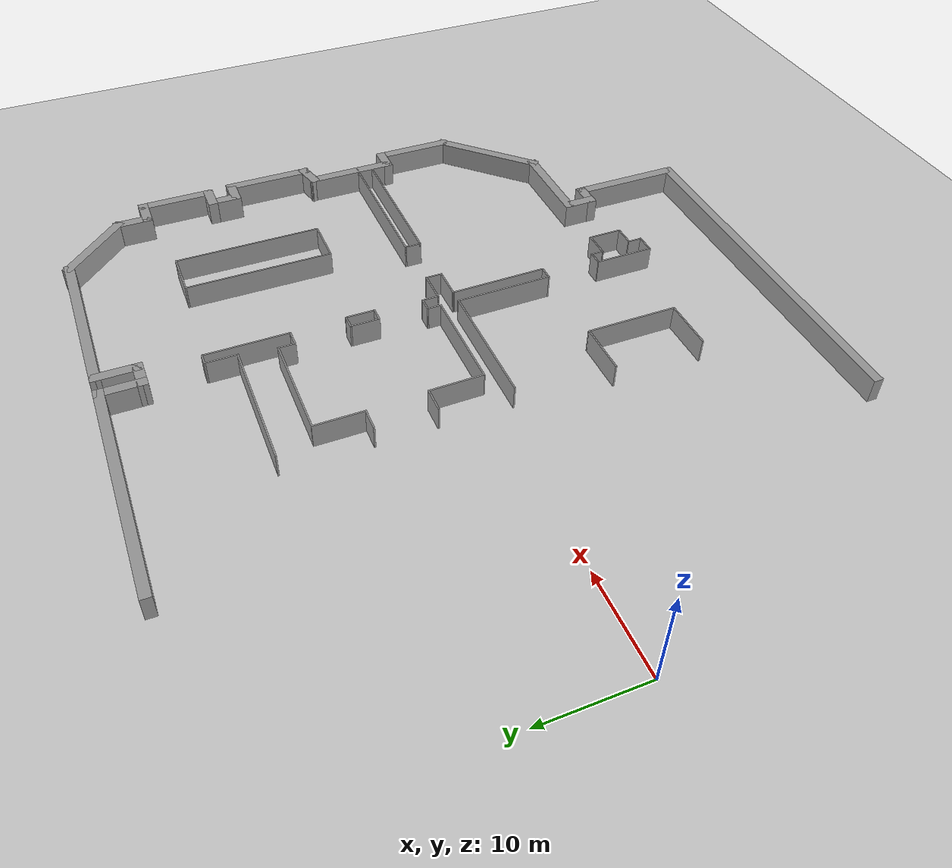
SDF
<sdf version="1.7">
 <world name="default">
  <model name="ground_plane">
   <static>1</static>
   <link name="link">
    <collision name="collision">
     <geometry><plane><normal>0 0 1</normal><size>100 100</size></plane></geometry>
     <surface><friction><ode><mu>100</mu><mu2>50</mu2></ode></friction></surface>
    </collision>
    <visual name="visual">
     <cast_shadows>0</cast_shadows>
     <geometry><plane><normal>0 0 1</normal><size>100 100</size></plane></geometry>
     <material>
      <script><uri>file://media/materials/scripts/gazebo.material</uri><name>Gazebo/Grey</name></script>
     </material>
    </visual>
   </link>
  </model>
  <model name="map7">
   <pose>-22.5342 -8.78038 0 0 -0 0</pose>
   <link name="Wall_12">
    <collision name="Wall_12_Collision">
     <geometry><box><size>23.3499 1 2.5</size></box></geometry>
     <pose>0 0 1.25 0 -0 0</pose>
    </collision>
    <visual name="Wall_12_Visual">
     <pose>0 0 1.25 0 -0 0</pose>
     <geometry><box><size>23.3499 1 2.5</size></box></geometry>
     <material>
      <script><uri>file://media/materials/scripts/gazebo.material</uri><name>Gazebo/Grey</name></script>
      <ambient>1 1 1 1</ambient>
     </material>
     <meta><layer>0</layer></meta>
    </visual>
    <pose>52.6552 41.1354 0 0 -0 0</pose>
   </link>
   <link name="Wall_13">
    <collision name="Wall_13_Collision">
     <geometry><box><size>4.84959 1 2.5</size></box></geometry>
     <pose>0 0 1.25 0 -0 0</pose>
    </collision>
    <visual name="Wall_13_Visual">
     <pose>0 0 1.25 0 -0 0</pose>
     <geometry><box><size>4.84959 1 2.5</size></box></geometry>
     <material>
      <script><uri>file://media/materials/scripts/gazebo.material</uri><name>Gazebo/Grey</name></script>
      <ambient>1 1 1 1</ambient>
     </material>
     <meta><layer>0</layer></meta>
    </visual>
    <pose>63.8302 39.2104 0 0 -0 -1.5708</pose>
   </link>
   <link name="Wall_14">
    <collision name="Wall_14_Collision">
     <geometry><box><size>3.09994 1 2.5</size></box></geometry>
     <pose>0 0 1.25 0 -0 0</pose>
    </collision>
    <visual name="Wall_14_Visual">
     <pose>0 0 1.25 0 -0 0</pose>
     <geometry><box><size>3.09994 1 2.5</size></box></geometry>
     <material>
      <script><uri>file://media/materials/scripts/gazebo.material</uri><name>Gazebo/Grey</name></script>
      <ambient>1 1 1 1</ambient>
     </material>
     <meta><layer>0</layer></meta>
    </visual>
    <pose>64.8802 37.2949 0 0 -0 0.009047</pose>
   </link>
   <link name="Wall_15">
    <collision name="Wall_15_Collision">
     <geometry><box><size>4.85064 1 2.5</size></box></geometry>
     <pose>0 0 1.25 0 -0 0</pose>
    </collision>
    <visual name="Wall_15_Visual">
     <pose>0 0 1.25 0 -0 0</pose>
     <geometry><box><size>4.85064 1 2.5</size></box></geometry>
     <material>
      <script><uri>file://media/materials/scripts/gazebo.material</uri><name>Gazebo/Grey</name></script>
      <ambient>1 1 1 1</ambient>
     </material>
     <meta><layer>0</layer></meta>
    </visual>
    <pose>65.9302 39.2299 0 0 -0 1.5708</pose>
   </link>
   <link name="Wall_16">
    <collision name="Wall_16_Collision">
     <geometry><box><size>17.85 1 2.5</size></box></geometry>
     <pose>0 0 1.25 0 -0 0</pose>
    </collision>
    <visual name="Wall_16_Visual">
     <pose>0 0 1.25 0 -0 0</pose>
     <geometry><box><size>17.85 1 2.5</size></box></geometry>
     <material>
      <script><uri>file://media/materials/scripts/gazebo.material</uri><name>Gazebo/Grey</name></script>
      <ambient>1 1 1 1</ambient>
     </material>
     <meta><layer>0</layer></meta>
    </visual>
    <pose>74.3552 41.1454 0 0 -0 -0.001187</pose>
   </link>
   <link name="Wall_17">
    <collision name="Wall_17_Collision">
     <geometry><box><size>9.09967 1 2.5</size></box></geometry>
     <pose>0 0 1.25 0 -0 0</pose>
    </collision>
    <visual name="Wall_17_Visual">
     <pose>0 0 1.25 0 -0 0</pose>
     <geometry><box><size>9.09967 1 2.5</size></box></geometry>
     <material>
      <script><uri>file://media/materials/scripts/gazebo.material</uri><name>Gazebo/Grey</name></script>
      <ambient>1 1 1 1</ambient>
     </material>
     <meta><layer>0</layer></meta>
    </visual>
    <pose>85.6442 38.2719 0 0 -0 -0.785311</pose>
   </link>
   <link name="Wall_172">
    <collision name="Wall_172_Collision">
     <geometry><box><size>2.25 0.15 2.5</size></box></geometry>
     <pose>0 0 1.25 0 -0 0</pose>
    </collision>
    <visual name="Wall_172_Visual">
     <pose>0 0 1.25 0 -0 0</pose>
     <geometry><box><size>2.25 0.15 2.5</size></box></geometry>
     <material>
      <script><uri>file://media/materials/scripts/gazebo.material</uri><name>Gazebo/Grey</name></script>
      <ambient>1 1 1 1</ambient>
     </material>
     <meta><layer>0</layer></meta>
    </visual>
    <pose>52.019 20.0152 0 0 -0 0</pose>
   </link>
   <link name="Wall_173">
    <collision name="Wall_173_Collision">
     <geometry><box><size>5 0.15 2.5</size></box></geometry>
     <pose>0 0 1.25 0 -0 0</pose>
    </collision>
    <visual name="Wall_173_Visual">
     <pose>0 0 1.25 0 -0 0</pose>
     <geometry><box><size>5 0.15 2.5</size></box></geometry>
     <material>
      <script><uri>file://media/materials/scripts/gazebo.material</uri><name>Gazebo/Grey</name></script>
      <ambient>1 1 1 1</ambient>
     </material>
     <meta><layer>0</layer></meta>
    </visual>
    <pose>53.069 22.4402 0 0 -0 1.5708</pose>
   </link>
   <link name="Wall_174">
    <collision name="Wall_174_Collision">
     <geometry><box><size>10.75 0.15 2.5</size></box></geometry>
     <pose>0 0 1.25 0 -0 0</pose>
    </collision>
    <visual name="Wall_174_Visual">
     <pose>0 0 1.25 0 -0 0</pose>
     <geometry><box><size>10.75 0.15 2.5</size></box></geometry>
     <material>
      <script><uri>file://media/materials/scripts/gazebo.material</uri><name>Gazebo/Grey</name></script>
      <ambient>1 1 1 1</ambient>
     </material>
     <meta><layer>0</layer></meta>
    </visual>
    <pose>58.369 24.8652 0 0 -0 0</pose>
   </link>
   <link name="Wall_175">
    <collision name="Wall_175_Collision">
     <geometry><box><size>1.75 0.15 2.5</size></box></geometry>
     <pose>0 0 1.25 0 -0 0</pose>
    </collision>
    <visual name="Wall_175_Visual">
     <pose>0 0 1.25 0 -0 0</pose>
     <geometry><box><size>1.75 0.15 2.5</size></box></geometry>
     <material>
      <script><uri>file://media/materials/scripts/gazebo.material</uri><name>Gazebo/Grey</name></script>
      <ambient>1 1 1 1</ambient>
     </material>
     <meta><layer>0</layer></meta>
    </visual>
    <pose>63.669 24.0652 0 0 -0 -1.5708</pose>
   </link>
   <link name="Wall_176">
    <collision name="Wall_176_Collision">
     <geometry><box><size>1.75 0.15 2.5</size></box></geometry>
     <pose>0 0 1.25 0 -0 0</pose>
    </collision>
    <visual name="Wall_176_Visual">
     <pose>0 0 1.25 0 -0 0</pose>
     <geometry><box><size>1.75 0.15 2.5</size></box></geometry>
     <material>
      <script><uri>file://media/materials/scripts/gazebo.material</uri><name>Gazebo/Grey</name></script>
      <ambient>1 1 1 1</ambient>
     </material>
     <meta><layer>0</layer></meta>
    </visual>
    <pose>64.469 23.2652 0 0 -0 0</pose>
   </link>
   <link name="Wall_177">
    <collision name="Wall_177_Collision">
     <geometry><box><size>8.5 0.15 2.5</size></box></geometry>
     <pose>0 0 1.25 0 -0 0</pose>
    </collision>
    <visual name="Wall_177_Visual">
     <pose>0 0 1.25 0 -0 0</pose>
     <geometry><box><size>8.5 0.15 2.5</size></box></geometry>
     <material>
      <script><uri>file://media/materials/scripts/gazebo.material</uri><name>Gazebo/Grey</name></script>
      <ambient>1 1 1 1</ambient>
     </material>
     <meta><layer>0</layer></meta>
    </visual>
    <pose>65.269 27.4402 0 0 -0 1.5708</pose>
   </link>
   <link name="Wall_178">
    <collision name="Wall_178_Collision">
     <geometry><box><size>1.25 0.15 2.5</size></box></geometry>
     <pose>0 0 1.25 0 -0 0</pose>
    </collision>
    <visual name="Wall_178_Visual">
     <pose>0 0 1.25 0 -0 0</pose>
     <geometry><box><size>1.25 0.15 2.5</size></box></geometry>
     <material>
      <script><uri>file://media/materials/scripts/gazebo.material</uri><name>Gazebo/Grey</name></script>
      <ambient>1 1 1 1</ambient>
     </material>
     <meta><layer>0</layer></meta>
    </visual>
    <pose>64.719 31.6152 0 0 -0 3.14159</pose>
   </link>
   <link name="Wall_179">
    <collision name="Wall_179_Collision">
     <geometry><box><size>3.20217 0.15 2.5</size></box></geometry>
     <pose>0 0 1.25 0 -0 0</pose>
    </collision>
    <visual name="Wall_179_Visual">
     <pose>0 0 1.25 0 -0 0</pose>
     <geometry><box><size>3.20217 0.15 2.5</size></box></geometry>
     <material>
      <script><uri>file://media/materials/scripts/gazebo.material</uri><name>Gazebo/Grey</name></script>
      <ambient>1 1 1 1</ambient>
     </material>
     <meta><layer>0</layer></meta>
    </visual>
    <pose>64.169 30.0891 0 0 -0 -1.5708</pose>
   </link>
   <link name="Wall_18">
    <collision name="Wall_18_Collision">
     <geometry><box><size>4.1 1 2.5</size></box></geometry>
     <pose>0 0 1.25 0 -0 0</pose>
    </collision>
    <visual name="Wall_18_Visual">
     <pose>0 0 1.25 0 -0 0</pose>
     <geometry><box><size>4.1 1 2.5</size></box></geometry>
     <material>
      <script><uri>file://media/materials/scripts/gazebo.material</uri><name>Gazebo/Grey</name></script>
      <ambient>1 1 1 1</ambient>
     </material>
     <meta><layer>0</layer></meta>
    </visual>
    <pose>88.5082 33.8584 0 0 -0 -1.5708</pose>
   </link>
   <link name="Wall_180">
    <collision name="Wall_180_Collision">
     <geometry><box><size>13.3254 0.15 2.5</size></box></geometry>
     <pose>0 0 1.25 0 -0 0</pose>
    </collision>
    <visual name="Wall_180_Visual">
     <pose>0 0 1.25 0 -0 0</pose>
     <geometry><box><size>13.3254 0.15 2.5</size></box></geometry>
     <material>
      <script><uri>file://media/materials/scripts/gazebo.material</uri><name>Gazebo/Grey</name></script>
      <ambient>1 1 1 1</ambient>
     </material>
     <meta><layer>0</layer></meta>
    </visual>
    <pose>57.5566 28.5767 0 0 -0 3.13575</pose>
   </link>
   <link name="Wall_182">
    <collision name="Wall_182_Collision">
     <geometry><box><size>15 0.15 2.5</size></box></geometry>
     <pose>0 0 1.25 0 -0 0</pose>
    </collision>
    <visual name="Wall_182_Visual">
     <pose>0 0 1.25 0 -0 0</pose>
     <geometry><box><size>15 0.15 2.5</size></box></geometry>
     <material>
      <script><uri>file://media/materials/scripts/gazebo.material</uri><name>Gazebo/Grey</name></script>
      <ambient>1 1 1 1</ambient>
     </material>
     <meta><layer>0</layer></meta>
    </visual>
    <pose>75.4673 23.5352 0 0 -0 -1.5708</pose>
   </link>
   <link name="Wall_183">
    <collision name="Wall_183_Collision">
     <geometry><box><size>4.75 0.15 2.5</size></box></geometry>
     <pose>0 0 1.25 0 -0 0</pose>
    </collision>
    <visual name="Wall_183_Visual">
     <pose>0 0 1.25 0 -0 0</pose>
     <geometry><box><size>4.75 0.15 2.5</size></box></geometry>
     <material>
      <script><uri>file://media/materials/scripts/gazebo.material</uri><name>Gazebo/Grey</name></script>
      <ambient>1 1 1 1</ambient>
     </material>
     <meta><layer>0</layer></meta>
    </visual>
    <pose>77.7673 16.1102 0 0 -0 0</pose>
   </link>
   <link name="Wall_184">
    <collision name="Wall_184_Collision">
     <geometry><box><size>15 0.15 2.5</size></box></geometry>
     <pose>0 0 1.25 0 -0 0</pose>
    </collision>
    <visual name="Wall_184_Visual">
     <pose>0 0 1.25 0 -0 0</pose>
     <geometry><box><size>15 0.15 2.5</size></box></geometry>
     <material>
      <script><uri>file://media/materials/scripts/gazebo.material</uri><name>Gazebo/Grey</name></script>
      <ambient>1 1 1 1</ambient>
     </material>
     <meta><layer>0</layer></meta>
    </visual>
    <pose>80.0673 23.5352 0 0 -0 1.5708</pose>
   </link>
   <link name="Wall_185">
    <collision name="Wall_185_Collision">
     <geometry><box><size>4.75 0.15 2.5</size></box></geometry>
     <pose>0 0 1.25 0 -0 0</pose>
    </collision>
    <visual name="Wall_185_Visual">
     <pose>0 0 1.25 0 -0 0</pose>
     <geometry><box><size>4.75 0.15 2.5</size></box></geometry>
     <material>
      <script><uri>file://media/materials/scripts/gazebo.material</uri><name>Gazebo/Grey</name></script>
      <ambient>1 1 1 1</ambient>
     </material>
     <meta><layer>0</layer></meta>
    </visual>
    <pose>77.7673 30.9602 0 0 -0 3.14159</pose>
   </link>
   <link name="Wall_188">
    <collision name="Wall_188_Collision">
     <geometry><box><size>13 0.15 2.5</size></box></geometry>
     <pose>0 0 1.25 0 -0 0</pose>
    </collision>
    <visual name="Wall_188_Visual">
     <pose>0 0 1.25 0 -0 0</pose>
     <geometry><box><size>13 0.15 2.5</size></box></geometry>
     <material>
      <script><uri>file://media/materials/scripts/gazebo.material</uri><name>Gazebo/Grey</name></script>
      <ambient>1 1 1 1</ambient>
     </material>
     <meta><layer>0</layer></meta>
    </visual>
    <pose>57.3149 6.89263 0 0 -0 -0.000982</pose>
   </link>
   <link name="Wall_189">
    <collision name="Wall_189_Collision">
     <geometry><box><size>9.82046 0.15 2.5</size></box></geometry>
     <pose>0 0 1.25 0 -0 0</pose>
    </collision>
    <visual name="Wall_189_Visual">
     <pose>0 0 1.25 0 -0 0</pose>
     <geometry><box><size>9.82046 0.15 2.5</size></box></geometry>
     <material>
      <script><uri>file://media/materials/scripts/gazebo.material</uri><name>Gazebo/Grey</name></script>
      <ambient>1 1 1 1</ambient>
     </material>
     <meta><layer>0</layer></meta>
    </visual>
    <pose>63.7849 2.0513 0 0 -0 -1.56149</pose>
   </link>
   <link name="Wall_19">
    <collision name="Wall_19_Collision">
     <geometry><box><size>3.35 1 2.5</size></box></geometry>
     <pose>0 0 1.25 0 -0 0</pose>
    </collision>
    <visual name="Wall_19_Visual">
     <pose>0 0 1.25 0 -0 0</pose>
     <geometry><box><size>3.35 1 2.5</size></box></geometry>
     <material>
      <script><uri>file://media/materials/scripts/gazebo.material</uri><name>Gazebo/Grey</name></script>
      <ambient>1 1 1 1</ambient>
     </material>
     <meta><layer>0</layer></meta>
    </visual>
    <pose>89.6832 32.3084 0 0 -0 0</pose>
   </link>
   <link name="Wall_190">
    <collision name="Wall_190_Collision">
     <geometry><box><size>1.5 0.15 2.5</size></box></geometry>
     <pose>0 0 1.25 0 -0 0</pose>
    </collision>
    <visual name="Wall_190_Visual">
     <pose>0 0 1.25 0 -0 0</pose>
     <geometry><box><size>1.5 0.15 2.5</size></box></geometry>
     <material>
      <script><uri>file://media/materials/scripts/gazebo.material</uri><name>Gazebo/Grey</name></script>
      <ambient>1 1 1 1</ambient>
     </material>
     <meta><layer>0</layer></meta>
    </visual>
    <pose>64.5049 -2.8287 0 0 -0 0</pose>
   </link>
   <link name="Wall_191">
    <collision name="Wall_191_Collision">
     <geometry><box><size>9.82046 0.15 2.5</size></box></geometry>
     <pose>0 0 1.25 0 -0 0</pose>
    </collision>
    <visual name="Wall_191_Visual">
     <pose>0 0 1.25 0 -0 0</pose>
     <geometry><box><size>9.82046 0.15 2.5</size></box></geometry>
     <material>
      <script><uri>file://media/materials/scripts/gazebo.material</uri><name>Gazebo/Grey</name></script>
      <ambient>1 1 1 1</ambient>
     </material>
     <meta><layer>0</layer></meta>
    </visual>
    <pose>65.1349 2.0513 0 0 -0 1.5801</pose>
   </link>
   <link name="Wall_192">
    <collision name="Wall_192_Collision">
     <geometry><box><size>3.25 0.15 2.5</size></box></geometry>
     <pose>0 0 1.25 0 -0 0</pose>
    </collision>
    <visual name="Wall_192_Visual">
     <pose>0 0 1.25 0 -0 0</pose>
     <geometry><box><size>3.25 0.15 2.5</size></box></geometry>
     <material>
      <script><uri>file://media/materials/scripts/gazebo.material</uri><name>Gazebo/Grey</name></script>
      <ambient>1 1 1 1</ambient>
     </material>
     <meta><layer>0</layer></meta>
    </visual>
    <pose>66.6399 6.88632 0 0 -0 0</pose>
   </link>
   <link name="Wall_193">
    <collision name="Wall_193_Collision">
     <geometry><box><size>1.75 0.15 2.5</size></box></geometry>
     <pose>0 0 1.25 0 -0 0</pose>
    </collision>
    <visual name="Wall_193_Visual">
     <pose>0 0 1.25 0 -0 0</pose>
     <geometry><box><size>1.75 0.15 2.5</size></box></geometry>
     <material>
      <script><uri>file://media/materials/scripts/gazebo.material</uri><name>Gazebo/Grey</name></script>
      <ambient>1 1 1 1</ambient>
     </material>
     <meta><layer>0</layer></meta>
    </visual>
    <pose>68.1899 7.68632 0 0 -0 1.5708</pose>
   </link>
   <link name="Wall_194">
    <collision name="Wall_194_Collision">
     <geometry><box><size>3.25 0.15 2.5</size></box></geometry>
     <pose>0 0 1.25 0 -0 0</pose>
    </collision>
    <visual name="Wall_194_Visual">
     <pose>0 0 1.25 0 -0 0</pose>
     <geometry><box><size>3.25 0.15 2.5</size></box></geometry>
     <material>
      <script><uri>file://media/materials/scripts/gazebo.material</uri><name>Gazebo/Grey</name></script>
      <ambient>1 1 1 1</ambient>
     </material>
     <meta><layer>0</layer></meta>
    </visual>
    <pose>66.6399 8.48632 0 0 -0 3.14159</pose>
   </link>
   <link name="Wall_195">
    <collision name="Wall_195_Collision">
     <geometry><box><size>1.75 0.15 2.5</size></box></geometry>
     <pose>0 0 1.25 0 -0 0</pose>
    </collision>
    <visual name="Wall_195_Visual">
     <pose>0 0 1.25 0 -0 0</pose>
     <geometry><box><size>1.75 0.15 2.5</size></box></geometry>
     <material>
      <script><uri>file://media/materials/scripts/gazebo.material</uri><name>Gazebo/Grey</name></script>
      <ambient>1 1 1 1</ambient>
     </material>
     <meta><layer>0</layer></meta>
    </visual>
    <pose>65.0899 9.28632 0 0 -0 1.5708</pose>
   </link>
   <link name="Wall_196">
    <collision name="Wall_196_Collision">
     <geometry><box><size>1.5 0.15 2.5</size></box></geometry>
     <pose>0 0 1.25 0 -0 0</pose>
    </collision>
    <visual name="Wall_196_Visual">
     <pose>0 0 1.25 0 -0 0</pose>
     <geometry><box><size>1.5 0.15 2.5</size></box></geometry>
     <material>
      <script><uri>file://media/materials/scripts/gazebo.material</uri><name>Gazebo/Grey</name></script>
      <ambient>1 1 1 1</ambient>
     </material>
     <meta><layer>0</layer></meta>
    </visual>
    <pose>64.4149 10.0863 0 0 -0 3.14159</pose>
   </link>
   <link name="Wall_197">
    <collision name="Wall_197_Collision">
     <geometry><box><size>1.5 0.15 2.5</size></box></geometry>
     <pose>0 0 1.25 0 -0 0</pose>
    </collision>
    <visual name="Wall_197_Visual">
     <pose>0 0 1.25 0 -0 0</pose>
     <geometry><box><size>1.5 0.15 2.5</size></box></geometry>
     <material>
      <script><uri>file://media/materials/scripts/gazebo.material</uri><name>Gazebo/Grey</name></script>
      <ambient>1 1 1 1</ambient>
     </material>
     <meta><layer>0</layer></meta>
    </visual>
    <pose>63.7399 9.41132 0 0 -0 -1.5708</pose>
   </link>
   <link name="Wall_198">
    <collision name="Wall_198_Collision">
     <geometry><box><size>10.5 0.15 2.5</size></box></geometry>
     <pose>0 0 1.25 0 -0 0</pose>
    </collision>
    <visual name="Wall_198_Visual">
     <pose>0 0 1.25 0 -0 0</pose>
     <geometry><box><size>10.5 0.15 2.5</size></box></geometry>
     <material>
      <script><uri>file://media/materials/scripts/gazebo.material</uri><name>Gazebo/Grey</name></script>
      <ambient>1 1 1 1</ambient>
     </material>
     <meta><layer>0</layer></meta>
    </visual>
    <pose>58.5649 8.73632 0 0 -0 3.14159</pose>
   </link>
   <link name="Wall_199">
    <collision name="Wall_199_Collision">
     <geometry><box><size>5.5 0.15 2.5</size></box></geometry>
     <pose>0 0 1.25 0 -0 0</pose>
    </collision>
    <visual name="Wall_199_Visual">
     <pose>0 0 1.25 0 -0 0</pose>
     <geometry><box><size>5.5 0.15 2.5</size></box></geometry>
     <material>
      <script><uri>file://media/materials/scripts/gazebo.material</uri><name>Gazebo/Grey</name></script>
      <ambient>1 1 1 1</ambient>
     </material>
     <meta><layer>0</layer></meta>
    </visual>
    <pose>53.3647 11.4113 0 0 -0 1.58023</pose>
   </link>
   <link name="Wall_20">
    <collision name="Wall_20_Collision">
     <geometry><box><size>8.10021 1 2.5</size></box></geometry>
     <pose>0 0 1.25 0 -0 0</pose>
    </collision>
    <visual name="Wall_20_Visual">
     <pose>0 0 1.25 0 -0 0</pose>
     <geometry><box><size>8.10021 1 2.5</size></box></geometry>
     <material>
      <script><uri>file://media/materials/scripts/gazebo.material</uri><name>Gazebo/Grey</name></script>
      <ambient>1 1 1 1</ambient>
     </material>
     <meta><layer>0</layer></meta>
    </visual>
    <pose>90.8582 28.7584 0 0 -0 -1.5708</pose>
   </link>
   <link name="Wall_200">
    <collision name="Wall_200_Collision">
     <geometry><box><size>2.5 0.15 2.5</size></box></geometry>
     <pose>0 0 1.25 0 -0 0</pose>
    </collision>
    <visual name="Wall_200_Visual">
     <pose>0 0 1.25 0 -0 0</pose>
     <geometry><box><size>2.5 0.15 2.5</size></box></geometry>
     <material>
      <script><uri>file://media/materials/scripts/gazebo.material</uri><name>Gazebo/Grey</name></script>
      <ambient>1 1 1 1</ambient>
     </material>
     <meta><layer>0</layer></meta>
    </visual>
    <pose>52.1645 14.0863 0 0 -0 3.14159</pose>
   </link>
   <link name="Wall_203">
    <collision name="Wall_203_Collision">
     <geometry><box><size>5.23882 0.15 2.5</size></box></geometry>
     <pose>0 0 1.25 0 -0 0</pose>
    </collision>
    <visual name="Wall_203_Visual">
     <pose>0 0 1.25 0 -0 0</pose>
     <geometry><box><size>5.23882 0.15 2.5</size></box></geometry>
     <material>
      <script><uri>file://media/materials/scripts/gazebo.material</uri><name>Gazebo/Grey</name></script>
      <ambient>1 1 1 1</ambient>
     </material>
     <meta><layer>0</layer></meta>
    </visual>
    <pose>52.545 -11.8464 0 0 -0 0</pose>
   </link>
   <link name="Wall_204">
    <collision name="Wall_204_Collision">
     <geometry><box><size>9.25 0.15 2.5</size></box></geometry>
     <pose>0 0 1.25 0 -0 0</pose>
    </collision>
    <visual name="Wall_204_Visual">
     <pose>0 0 1.25 0 -0 0</pose>
     <geometry><box><size>9.25 0.15 2.5</size></box></geometry>
     <material>
      <script><uri>file://media/materials/scripts/gazebo.material</uri><name>Gazebo/Grey</name></script>
      <ambient>1 1 1 1</ambient>
     </material>
     <meta><layer>0</layer></meta>
    </visual>
    <pose>55.1006 -7.29637 0 0 -0 1.56834</pose>
   </link>
   <link name="Wall_205">
    <collision name="Wall_205_Collision">
     <geometry><box><size>5.25 0.15 2.5</size></box></geometry>
     <pose>0 0 1.25 0 -0 0</pose>
    </collision>
    <visual name="Wall_205_Visual">
     <pose>0 0 1.25 0 -0 0</pose>
     <geometry><box><size>5.25 0.15 2.5</size></box></geometry>
     <material>
      <script><uri>file://media/materials/scripts/gazebo.material</uri><name>Gazebo/Grey</name></script>
      <ambient>1 1 1 1</ambient>
     </material>
     <meta><layer>0</layer></meta>
    </visual>
    <pose>52.5506 -2.74636 0 0 -0 3.14159</pose>
   </link>
   <link name="Wall_207">
    <collision name="Wall_207_Collision">
     <geometry><box><size>6 0.15 2.5</size></box></geometry>
     <pose>0 0 1.25 0 -0 0</pose>
    </collision>
    <visual name="Wall_207_Visual">
     <pose>0 0 1.25 0 -0 0</pose>
     <geometry><box><size>6 0.15 2.5</size></box></geometry>
     <material>
      <script><uri>file://media/materials/scripts/gazebo.material</uri><name>Gazebo/Grey</name></script>
      <ambient>1 1 1 1</ambient>
     </material>
     <meta><layer>0</layer></meta>
    </visual>
    <pose>64.1324 -11.5329 0 0 -0 -1.5708</pose>
   </link>
   <link name="Wall_208">
    <collision name="Wall_208_Collision">
     <geometry><box><size>2 0.15 2.5</size></box></geometry>
     <pose>0 0 1.25 0 -0 0</pose>
    </collision>
    <visual name="Wall_208_Visual">
     <pose>0 0 1.25 0 -0 0</pose>
     <geometry><box><size>2 0.15 2.5</size></box></geometry>
     <material>
      <script><uri>file://media/materials/scripts/gazebo.material</uri><name>Gazebo/Grey</name></script>
      <ambient>1 1 1 1</ambient>
     </material>
     <meta><layer>0</layer></meta>
    </visual>
    <pose>65.0574 -14.4579 0 0 -0 0</pose>
   </link>
   <link name="Wall_209">
    <collision name="Wall_209_Collision">
     <geometry><box><size>1.5 0.15 2.5</size></box></geometry>
     <pose>0 0 1.25 0 -0 0</pose>
    </collision>
    <visual name="Wall_209_Visual">
     <pose>0 0 1.25 0 -0 0</pose>
     <geometry><box><size>1.5 0.15 2.5</size></box></geometry>
     <material>
      <script><uri>file://media/materials/scripts/gazebo.material</uri><name>Gazebo/Grey</name></script>
      <ambient>1 1 1 1</ambient>
     </material>
     <meta><layer>0</layer></meta>
    </visual>
    <pose>65.9824 -13.7829 0 0 -0 1.5708</pose>
   </link>
   <link name="Wall_21">
    <collision name="Wall_21_Collision">
     <geometry><box><size>2.85049 1 2.5</size></box></geometry>
     <pose>0 0 1.25 0 -0 0</pose>
    </collision>
    <visual name="Wall_21_Visual">
     <pose>0 0 1.25 0 -0 0</pose>
     <geometry><box><size>2.85049 1 2.5</size></box></geometry>
     <material>
      <script><uri>file://media/materials/scripts/gazebo.material</uri><name>Gazebo/Grey</name></script>
      <ambient>1 1 1 1</ambient>
     </material>
     <meta><layer>0</layer></meta>
    </visual>
    <pose>89.9332 25.2084 0 0 -0 3.14159</pose>
   </link>
   <link name="Wall_210">
    <collision name="Wall_210_Collision">
     <geometry><box><size>2.25 0.15 2.5</size></box></geometry>
     <pose>0 0 1.25 0 -0 0</pose>
    </collision>
    <visual name="Wall_210_Visual">
     <pose>0 0 1.25 0 -0 0</pose>
     <geometry><box><size>2.25 0.15 2.5</size></box></geometry>
     <material>
      <script><uri>file://media/materials/scripts/gazebo.material</uri><name>Gazebo/Grey</name></script>
      <ambient>1 1 1 1</ambient>
     </material>
     <meta><layer>0</layer></meta>
    </visual>
    <pose>67.0324 -13.1079 0 0 -0 0</pose>
   </link>
   <link name="Wall_211">
    <collision name="Wall_211_Collision">
     <geometry><box><size>3.5 0.15 2.5</size></box></geometry>
     <pose>0 0 1.25 0 -0 0</pose>
    </collision>
    <visual name="Wall_211_Visual">
     <pose>0 0 1.25 0 -0 0</pose>
     <geometry><box><size>3.5 0.15 2.5</size></box></geometry>
     <material>
      <script><uri>file://media/materials/scripts/gazebo.material</uri><name>Gazebo/Grey</name></script>
      <ambient>1 1 1 1</ambient>
     </material>
     <meta><layer>0</layer></meta>
    </visual>
    <pose>68.0824 -11.4329 0 0 -0 1.5708</pose>
   </link>
   <link name="Wall_212">
    <collision name="Wall_212_Collision">
     <geometry><box><size>2.75 0.15 2.5</size></box></geometry>
     <pose>0 0 1.25 0 -0 0</pose>
    </collision>
    <visual name="Wall_212_Visual">
     <pose>0 0 1.25 0 -0 0</pose>
     <geometry><box><size>2.75 0.15 2.5</size></box></geometry>
     <material>
      <script><uri>file://media/materials/scripts/gazebo.material</uri><name>Gazebo/Grey</name></script>
      <ambient>1 1 1 1</ambient>
     </material>
     <meta><layer>0</layer></meta>
    </visual>
    <pose>66.7824 -9.75786 0 0 -0 3.14159</pose>
   </link>
   <link name="Wall_213">
    <collision name="Wall_213_Collision">
     <geometry><box><size>1.3657 0.15 2.5</size></box></geometry>
     <pose>0 0 1.25 0 -0 0</pose>
    </collision>
    <visual name="Wall_213_Visual">
     <pose>0 0 1.25 0 -0 0</pose>
     <geometry><box><size>1.3657 0.15 2.5</size></box></geometry>
     <material>
      <script><uri>file://media/materials/scripts/gazebo.material</uri><name>Gazebo/Grey</name></script>
      <ambient>1 1 1 1</ambient>
     </material>
     <meta><layer>0</layer></meta>
    </visual>
    <pose>65.4934 -9.15011 0 0 -0 1.55279</pose>
   </link>
   <link name="Wall_214">
    <collision name="Wall_214_Collision">
     <geometry><box><size>1.5 0.15 2.5</size></box></geometry>
     <pose>0 0 1.25 0 -0 0</pose>
    </collision>
    <visual name="Wall_214_Visual">
     <pose>0 0 1.25 0 -0 0</pose>
     <geometry><box><size>1.5 0.15 2.5</size></box></geometry>
     <material>
      <script><uri>file://media/materials/scripts/gazebo.material</uri><name>Gazebo/Grey</name></script>
      <ambient>1 1 1 1</ambient>
     </material>
     <meta><layer>0</layer></meta>
    </visual>
    <pose>64.8293 -8.53923 0 0 -0 3.14159</pose>
   </link>
   <link name="Wall_22">
    <collision name="Wall_22_Collision">
     <geometry><box><size>3.581 1 2.5</size></box></geometry>
     <pose>0 0 1.25 0 -0 0</pose>
    </collision>
    <visual name="Wall_22_Visual">
     <pose>0 0 1.25 0 -0 0</pose>
     <geometry><box><size>3.581 1 2.5</size></box></geometry>
     <material>
      <script><uri>file://media/materials/scripts/gazebo.material</uri><name>Gazebo/Grey</name></script>
      <ambient>1 1 1 1</ambient>
     </material>
     <meta><layer>0</layer></meta>
    </visual>
    <pose>89.0082 23.9179 0 0 -0 -1.5708</pose>
   </link>
   <link name="Wall_221">
    <collision name="Wall_221_Collision">
     <geometry><box><size>3 0.15 2.5</size></box></geometry>
     <pose>0 0 1.25 0 -0 0</pose>
    </collision>
    <visual name="Wall_221_Visual">
     <pose>0 0 1.25 0 -0 0</pose>
     <geometry><box><size>3 0.15 2.5</size></box></geometry>
     <material>
      <script><uri>file://media/materials/scripts/gazebo.material</uri><name>Gazebo/Grey</name></script>
      <ambient>1 1 1 1</ambient>
     </material>
     <meta><layer>0</layer></meta>
    </visual>
    <pose>64.0666 16.3262 0 0 -0 -1.5708</pose>
   </link>
   <link name="Wall_222">
    <collision name="Wall_222_Collision">
     <geometry><box><size>1.5 0.15 2.5</size></box></geometry>
     <pose>0 0 1.25 0 -0 0</pose>
    </collision>
    <visual name="Wall_222_Visual">
     <pose>0 0 1.25 0 -0 0</pose>
     <geometry><box><size>1.5 0.15 2.5</size></box></geometry>
     <material>
      <script><uri>file://media/materials/scripts/gazebo.material</uri><name>Gazebo/Grey</name></script>
      <ambient>1 1 1 1</ambient>
     </material>
     <meta><layer>0</layer></meta>
    </visual>
    <pose>64.7416 14.9012 0 0 -0 0</pose>
   </link>
   <link name="Wall_223">
    <collision name="Wall_223_Collision">
     <geometry><box><size>3 0.15 2.5</size></box></geometry>
     <pose>0 0 1.25 0 -0 0</pose>
    </collision>
    <visual name="Wall_223_Visual">
     <pose>0 0 1.25 0 -0 0</pose>
     <geometry><box><size>3 0.15 2.5</size></box></geometry>
     <material>
      <script><uri>file://media/materials/scripts/gazebo.material</uri><name>Gazebo/Grey</name></script>
      <ambient>1 1 1 1</ambient>
     </material>
     <meta><layer>0</layer></meta>
    </visual>
    <pose>65.4166 16.3262 0 0 -0 1.5708</pose>
   </link>
   <link name="Wall_224">
    <collision name="Wall_224_Collision">
     <geometry><box><size>1.5 0.15 2.5</size></box></geometry>
     <pose>0 0 1.25 0 -0 0</pose>
    </collision>
    <visual name="Wall_224_Visual">
     <pose>0 0 1.25 0 -0 0</pose>
     <geometry><box><size>1.5 0.15 2.5</size></box></geometry>
     <material>
      <script><uri>file://media/materials/scripts/gazebo.material</uri><name>Gazebo/Grey</name></script>
      <ambient>1 1 1 1</ambient>
     </material>
     <meta><layer>0</layer></meta>
    </visual>
    <pose>64.7416 17.7512 0 0 -0 3.14159</pose>
   </link>
   <link name="Wall_226">
    <collision name="Wall_226_Collision">
     <geometry><box><size>15.75 0.15 2.5</size></box></geometry>
     <pose>0 0 1.25 0 -0 0</pose>
    </collision>
    <visual name="Wall_226_Visual">
     <pose>0 0 1.25 0 -0 0</pose>
     <geometry><box><size>15.75 0.15 2.5</size></box></geometry>
     <material>
      <script><uri>file://media/materials/scripts/gazebo.material</uri><name>Gazebo/Grey</name></script>
      <ambient>1 1 1 1</ambient>
     </material>
     <meta><layer>0</layer></meta>
    </visual>
    <pose>81.442 8.63741 0 0 -0 3.14159</pose>
   </link>
   <link name="Wall_227">
    <collision name="Wall_227_Collision">
     <geometry><box><size>1.75 0.15 2.5</size></box></geometry>
     <pose>0 0 1.25 0 -0 0</pose>
    </collision>
    <visual name="Wall_227_Visual">
     <pose>0 0 1.25 0 -0 0</pose>
     <geometry><box><size>1.75 0.15 2.5</size></box></geometry>
     <material>
      <script><uri>file://media/materials/scripts/gazebo.material</uri><name>Gazebo/Grey</name></script>
      <ambient>1 1 1 1</ambient>
     </material>
     <meta><layer>0</layer></meta>
    </visual>
    <pose>73.642 7.83741 0 0 -0 -1.5708</pose>
   </link>
   <link name="Wall_228">
    <collision name="Wall_228_Collision">
     <geometry><box><size>15.25 0.15 2.5</size></box></geometry>
     <pose>0 0 1.25 0 -0 0</pose>
    </collision>
    <visual name="Wall_228_Visual">
     <pose>0 0 1.25 0 -0 0</pose>
     <geometry><box><size>15.25 0.15 2.5</size></box></geometry>
     <material>
      <script><uri>file://media/materials/scripts/gazebo.material</uri><name>Gazebo/Grey</name></script>
      <ambient>1 1 1 1</ambient>
     </material>
     <meta><layer>0</layer></meta>
    </visual>
    <pose>81.192 7.03741 0 0 -0 0</pose>
   </link>
   <link name="Wall_23">
    <collision name="Wall_23_Collision">
     <geometry><box><size>3.09951 1 2.5</size></box></geometry>
     <pose>0 0 1.25 0 -0 0</pose>
    </collision>
    <visual name="Wall_23_Visual">
     <pose>0 0 1.25 0 -0 0</pose>
     <geometry><box><size>3.09951 1 2.5</size></box></geometry>
     <material>
      <script><uri>file://media/materials/scripts/gazebo.material</uri><name>Gazebo/Grey</name></script>
      <ambient>1 1 1 1</ambient>
     </material>
     <meta><layer>0</layer></meta>
    </visual>
    <pose>90.0582 22.6274 0 0 -0 0</pose>
   </link>
   <link name="Wall_24">
    <collision name="Wall_24_Collision">
     <geometry><box><size>9.36916 1 2.5</size></box></geometry>
     <pose>0 0 1.25 0 -0 0</pose>
    </collision>
    <visual name="Wall_24_Visual">
     <pose>0 0 1.25 0 -0 0</pose>
     <geometry><box><size>9.36916 1 2.5</size></box></geometry>
     <material>
      <script><uri>file://media/materials/scripts/gazebo.material</uri><name>Gazebo/Grey</name></script>
      <ambient>1 1 1 1</ambient>
     </material>
     <meta><layer>0</layer></meta>
    </visual>
    <pose>91.1082 18.4429 0 0 -0 -1.5708</pose>
   </link>
   <link name="Wall_25">
    <collision name="Wall_25_Collision">
     <geometry><box><size>3.10052 1 2.5</size></box></geometry>
     <pose>0 0 1.25 0 -0 0</pose>
    </collision>
    <visual name="Wall_25_Visual">
     <pose>0 0 1.25 0 -0 0</pose>
     <geometry><box><size>3.10052 1 2.5</size></box></geometry>
     <material>
      <script><uri>file://media/materials/scripts/gazebo.material</uri><name>Gazebo/Grey</name></script>
      <ambient>1 1 1 1</ambient>
     </material>
     <meta><layer>0</layer></meta>
    </visual>
    <pose>90.0937 13.9864 0 0 -0 -2.87964</pose>
   </link>
   <link name="Wall_26">
    <collision name="Wall_26_Collision">
     <geometry><box><size>9.59968 1 2.5</size></box></geometry>
     <pose>0 0 1.25 0 -0 0</pose>
    </collision>
    <visual name="Wall_26_Visual">
     <pose>0 0 1.25 0 -0 0</pose>
     <geometry><box><size>9.59968 1 2.5</size></box></geometry>
     <material>
      <script><uri>file://media/materials/scripts/gazebo.material</uri><name>Gazebo/Grey</name></script>
      <ambient>1 1 1 1</ambient>
     </material>
     <meta><layer>0</layer></meta>
    </visual>
    <pose>89.0792 9.41438 0 0 -0 -1.5708</pose>
   </link>
   <link name="Wall_27">
    <collision name="Wall_27_Collision">
     <geometry><box><size>2.85006 1 2.5</size></box></geometry>
     <pose>0 0 1.25 0 -0 0</pose>
    </collision>
    <visual name="Wall_27_Visual">
     <pose>0 0 1.25 0 -0 0</pose>
     <geometry><box><size>2.85006 1 2.5</size></box></geometry>
     <material>
      <script><uri>file://media/materials/scripts/gazebo.material</uri><name>Gazebo/Grey</name></script>
      <ambient>1 1 1 1</ambient>
     </material>
     <meta><layer>0</layer></meta>
    </visual>
    <pose>90.0042 5.11438 0 0 -0 0</pose>
   </link>
   <link name="Wall_28">
    <collision name="Wall_28_Collision">
     <geometry><box><size>8.59968 1 2.5</size></box></geometry>
     <pose>0 0 1.25 0 -0 0</pose>
    </collision>
    <visual name="Wall_28_Visual">
     <pose>0 0 1.25 0 -0 0</pose>
     <geometry><box><size>8.59968 1 2.5</size></box></geometry>
     <material>
      <script><uri>file://media/materials/scripts/gazebo.material</uri><name>Gazebo/Grey</name></script>
      <ambient>1 1 1 1</ambient>
     </material>
     <meta><layer>0</layer></meta>
    </visual>
    <pose>90.9292 1.31438 0 0 -0 -1.5708</pose>
   </link>
   <link name="Wall_29">
    <collision name="Wall_29_Collision">
     <geometry><box><size>12.0997 1 2.5</size></box></geometry>
     <pose>0 0 1.25 0 -0 0</pose>
    </collision>
    <visual name="Wall_29_Visual">
     <pose>0 0 1.25 0 -0 0</pose>
     <geometry><box><size>12.0997 1 2.5</size></box></geometry>
     <material>
      <script><uri>file://media/materials/scripts/gazebo.material</uri><name>Gazebo/Grey</name></script>
      <ambient>1 1 1 1</ambient>
     </material>
     <meta><layer>0</layer></meta>
    </visual>
    <pose>87.0047 -6.41012 0 0 -0 -2.35619</pose>
   </link>
   <link name="Wall_30">
    <collision name="Wall_30_Collision">
     <geometry><box><size>9.84982 1 2.5</size></box></geometry>
     <pose>0 0 1.25 0 -0 0</pose>
    </collision>
    <visual name="Wall_30_Visual">
     <pose>0 0 1.25 0 -0 0</pose>
     <geometry><box><size>9.84982 1 2.5</size></box></geometry>
     <material>
      <script><uri>file://media/materials/scripts/gazebo.material</uri><name>Gazebo/Grey</name></script>
      <ambient>1 1 1 1</ambient>
     </material>
     <meta><layer>0</layer></meta>
    </visual>
    <pose>78.6552 -10.3346 0 0 -0 3.14159</pose>
   </link>
   <link name="Wall_31">
    <collision name="Wall_31_Collision">
     <geometry><box><size>3.59956 1 2.5</size></box></geometry>
     <pose>0 0 1.25 0 -0 0</pose>
    </collision>
    <visual name="Wall_31_Visual">
     <pose>0 0 1.25 0 -0 0</pose>
     <geometry><box><size>3.59956 1 2.5</size></box></geometry>
     <material>
      <script><uri>file://media/materials/scripts/gazebo.material</uri><name>Gazebo/Grey</name></script>
      <ambient>1 1 1 1</ambient>
     </material>
     <meta><layer>0</layer></meta>
    </visual>
    <pose>74.2302 -11.6346 0 0 -0 -1.5708</pose>
   </link>
   <link name="Wall_32">
    <collision name="Wall_32_Collision">
     <geometry><box><size>2.85018 1 2.5</size></box></geometry>
     <pose>0 0 1.25 0 -0 0</pose>
    </collision>
    <visual name="Wall_32_Visual">
     <pose>0 0 1.25 0 -0 0</pose>
     <geometry><box><size>2.85018 1 2.5</size></box></geometry>
     <material>
      <script><uri>file://media/materials/scripts/gazebo.material</uri><name>Gazebo/Grey</name></script>
      <ambient>1 1 1 1</ambient>
     </material>
     <meta><layer>0</layer></meta>
    </visual>
    <pose>75.1552 -12.9346 0 0 -0 0</pose>
   </link>
   <link name="Wall_33">
    <collision name="Wall_33_Collision">
     <geometry><box><size>11.8496 1 2.5</size></box></geometry>
     <pose>0 0 1.25 0 -0 0</pose>
    </collision>
    <visual name="Wall_33_Visual">
     <pose>0 0 1.25 0 -0 0</pose>
     <geometry><box><size>11.8496 1 2.5</size></box></geometry>
     <material>
      <script><uri>file://media/materials/scripts/gazebo.material</uri><name>Gazebo/Grey</name></script>
      <ambient>1 1 1 1</ambient>
     </material>
     <meta><layer>0</layer></meta>
    </visual>
    <pose>76.0802 -18.3596 0 0 -0 -1.5708</pose>
   </link>
   <link name="Wall_34">
    <collision name="Wall_34_Collision">
     <geometry><box><size>36.9486 1 2.5</size></box></geometry>
     <pose>0 0 1.25 0 -0 0</pose>
    </collision>
    <visual name="Wall_34_Visual">
     <pose>0 0 1.25 0 -0 0</pose>
     <geometry><box><size>36.9486 1 2.5</size></box></geometry>
     <material>
      <script><uri>file://media/materials/scripts/gazebo.material</uri><name>Gazebo/Grey</name></script>
      <ambient>1 1 1 1</ambient>
     </material>
     <meta><layer>0</layer></meta>
    </visual>
    <pose>58.1062 -23.6636 0 0 -0 3.13486</pose>
   </link>
   <static>1</static>
  </model>
 </world>
</sdf>
